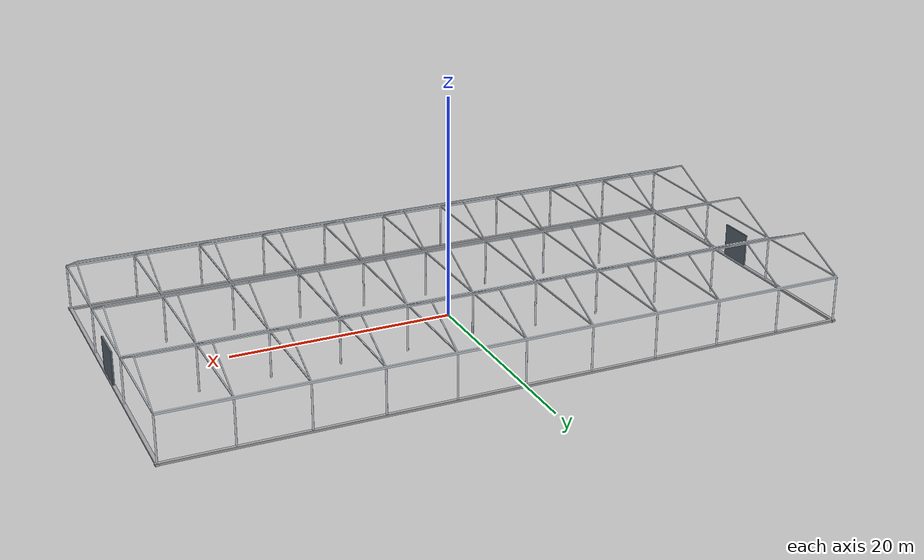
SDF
<?xml version="1.0" ?>
<sdf version="1.9">
  <model name="polyhouse_structure">
    <static>true</static>

    <!-- Main Structural Link -->
    <link name="structure_frame">
      <pose>0 0 0 0 0 0</pose>

      <!-- Concrete Foundation Plinths & Perimeter    -->
      <visual name="foundation_north">
        <pose>0 15.0 0.1 0 0 0</pose>
        <geometry><box><size>60.4 0.3 0.2</size></box></geometry>
        <material><ambient>0.6 0.6 0.62 1</ambient><diffuse>0.65 0.65 0.67 1</diffuse><roughness>0.8</roughness></material>
      </visual>
      <visual name="foundation_south">
        <pose>0 -15.0 0.1 0 0 0</pose>
        <geometry><box><size>60.4 0.3 0.2</size></box></geometry>
        <material><ambient>0.6 0.6 0.62 1</ambient><diffuse>0.65 0.65 0.67 1</diffuse><roughness>0.8</roughness></material>
      </visual>
      <visual name="foundation_east">
        <pose>30.0 0 0.1 0 0 0</pose>
        <geometry><box><size>0.3 30.4 0.2</size></box></geometry>
        <material><ambient>0.6 0.6 0.62 1</ambient><diffuse>0.65 0.65 0.67 1</diffuse><roughness>0.8</roughness></material>
      </visual>
      <visual name="foundation_west">
        <pose>-30.0 0 0.1 0 0 0</pose>
        <geometry><box><size>0.3 30.4 0.2</size></box></geometry>
        <material><ambient>0.6 0.6 0.62 1</ambient><diffuse>0.65 0.65 0.67 1</diffuse><roughness>0.8</roughness></material>
      </visual>

      <!-- Longitudinal Gutter Beams (Z = 4.2m)       -->
      <visual name="gutter_beam_y_neg15">
        <pose>0 -15.0 4.2 0 0 0</pose>
        <geometry><box><size>60.0 0.18 0.18</size></box></geometry>
        <material><ambient>0.7 0.73 0.76 1</ambient><diffuse>0.8 0.83 0.86 1</diffuse><specular>0.6 0.6 0.6 1</specular></material>
      </visual>
      <visual name="gutter_beam_y_neg5">
        <pose>0 -5.0 4.2 0 0 0</pose>
        <geometry><box><size>60.0 0.18 0.18</size></box></geometry>
        <material><ambient>0.7 0.73 0.76 1</ambient><diffuse>0.8 0.83 0.86 1</diffuse><specular>0.6 0.6 0.6 1</specular></material>
      </visual>
      <visual name="gutter_beam_y_pos5">
        <pose>0 5.0 4.2 0 0 0</pose>
        <geometry><box><size>60.0 0.18 0.18</size></box></geometry>
        <material><ambient>0.7 0.73 0.76 1</ambient><diffuse>0.8 0.83 0.86 1</diffuse><specular>0.6 0.6 0.6 1</specular></material>
      </visual>
      <visual name="gutter_beam_y_pos15">
        <pose>0 15.0 4.2 0 0 0</pose>
        <geometry><box><size>60.0 0.18 0.18</size></box></geometry>
        <material><ambient>0.7 0.73 0.76 1</ambient><diffuse>0.8 0.83 0.86 1</diffuse><specular>0.6 0.6 0.6 1</specular></material>
      </visual>

      <!-- Longitudinal Ridge Beams (Z = 6.5m)        -->
      <visual name="ridge_beam_bay1">
        <pose>0 -10.0 6.5 0 0 0</pose>
        <geometry><box><size>60.0 0.12 0.12</size></box></geometry>
        <material><ambient>0.7 0.73 0.76 1</ambient><diffuse>0.8 0.83 0.86 1</diffuse><specular>0.6 0.6 0.6 1</specular></material>
      </visual>
      <visual name="ridge_beam_bay2">
        <pose>0 0.0 6.5 0 0 0</pose>
        <geometry><box><size>60.0 0.12 0.12</size></box></geometry>
        <material><ambient>0.7 0.73 0.76 1</ambient><diffuse>0.8 0.83 0.86 1</diffuse><metalness>0.7</metalness><roughness>0.3</roughness></material>
      </visual>
      <visual name="ridge_beam_bay3">
        <pose>0 10.0 6.5 0 0 0</pose>
        <geometry><box><size>60.0 0.12 0.12</size></box></geometry>
        <material><ambient>0.7 0.73 0.76 1</ambient><diffuse>0.8 0.83 0.86 1</diffuse><metalness>0.7</metalness><roughness>0.3</roughness></material>
      </visual>

      <!-- Doorway Portal Frames (Front X=-30, Rear X=+30) -->
      <visual name="door_frame_west">
        <pose>-30.0 0 1.6 0 0 0</pose>
        <geometry><box><size>0.15 3.2 3.2</size></box></geometry>
        <material><ambient>0.3 0.35 0.4 1</ambient><diffuse>0.35 0.4 0.45 1</diffuse></material>
      </visual>
      <visual name="door_frame_east">
        <pose>30.0 0 1.6 0 0 0</pose>
        <geometry><box><size>0.15 3.2 3.2</size></box></geometry>
        <material><ambient>0.3 0.35 0.4 1</ambient><diffuse>0.35 0.4 0.45 1</diffuse></material>
      </visual>

      <!-- Collision for main perimeter and columns -->
      <collision name="perimeter_collision_north">
        <pose>0 15.0 2.1 0 0 0</pose>
        <geometry><box><size>60.0 0.2 4.2</size></box></geometry>
      </collision>
      <collision name="perimeter_collision_south">
        <pose>0 -15.0 2.1 0 0 0</pose>
        <geometry><box><size>60.0 0.2 4.2</size></box></geometry>
      </collision>
      <collision name="perimeter_collision_east">
        <pose>30.0 0 2.1 0 0 0</pose>
        <geometry><box><size>0.2 30.0 4.2</size></box></geometry>
      </collision>
      <collision name="perimeter_collision_west">
        <pose>-30.0 0 2.1 0 0 0</pose>
        <geometry><box><size>0.2 30.0 4.2</size></box></geometry>
      </collision>
    </link>

    <!-- Sub-links for the 11 Structural Frame Trusses along X -->
    <!-- Stations at X = -30, -24, -18, -12, -6, 0, 6, 12, 18, 24, 30 -->
    <!-- Each station includes 4 vertical columns and 6 gable rafters (3 bays) -->
    <!-- Rafter angle: atan2(2.3m, 5.0m) = 0.431 rad (24.7 deg), length = sqrt(5^2 + 2.3^2) = 5.50m -->

    <!-- Template for 11 frame stations: -->
    <!-- Bay 1 Rafters: Y=-12.5, Z=5.35, Roll=0.431 & Y=-7.5, Z=5.35, Roll=-0.431 -->
    <!-- Bay 2 Rafters: Y=-2.5, Z=5.35, Roll=0.431 & Y=2.5, Z=5.35, Roll=-0.431 -->
    <!-- Bay 3 Rafters: Y=7.5, Z=5.35, Roll=0.431 & Y=12.5, Z=5.35, Roll=-0.431 -->
    <!-- Horizontal Cross Tie at Z=4.2 across Y from -15 to +15 -->

    <!-- Station 0: X = -30.0 -->
    <link name="frame_st_00">
      <pose>-30.0 0 0 0 0 0</pose>
      <visual name="col_0"><pose>0 -15.0 2.1 0 0 0</pose><geometry><cylinder><radius>0.08</radius><length>4.2</length></cylinder></geometry><material><ambient>0.75 0.77 0.8 1</ambient><diffuse>0.82 0.84 0.87 1</diffuse></material></visual>
      <visual name="col_1"><pose>0 -5.0 2.1 0 0 0</pose><geometry><cylinder><radius>0.08</radius><length>4.2</length></cylinder></geometry><material><ambient>0.75 0.77 0.8 1</ambient><diffuse>0.82 0.84 0.87 1</diffuse></material></visual>
      <visual name="col_2"><pose>0 5.0 2.1 0 0 0</pose><geometry><cylinder><radius>0.08</radius><length>4.2</length></cylinder></geometry><material><ambient>0.75 0.77 0.8 1</ambient><diffuse>0.82 0.84 0.87 1</diffuse></material></visual>
      <visual name="col_3"><pose>0 15.0 2.1 0 0 0</pose><geometry><cylinder><radius>0.08</radius><length>4.2</length></cylinder></geometry><material><ambient>0.75 0.77 0.8 1</ambient><diffuse>0.82 0.84 0.87 1</diffuse></material></visual>
      <visual name="tie"><pose>0 0 4.2 0 0 0</pose><geometry><box><size>0.1 30.0 0.1</size></box></geometry><material><ambient>0.7 0.73 0.76 1</ambient><diffuse>0.8 0.83 0.86 1</diffuse></material></visual>
      <visual name="r1"><pose>0 -12.5 5.35 0.431 0 0</pose><geometry><box><size>0.08 5.51 0.08</size></box></geometry><material><ambient>0.7 0.73 0.76 1</ambient><diffuse>0.8 0.83 0.86 1</diffuse></material></visual>
      <visual name="r2"><pose>0 -7.5 5.35 -0.431 0 0</pose><geometry><box><size>0.08 5.51 0.08</size></box></geometry><material><ambient>0.7 0.73 0.76 1</ambient><diffuse>0.8 0.83 0.86 1</diffuse></material></visual>
      <visual name="r3"><pose>0 -2.5 5.35 0.431 0 0</pose><geometry><box><size>0.08 5.51 0.08</size></box></geometry><material><ambient>0.7 0.73 0.76 1</ambient><diffuse>0.8 0.83 0.86 1</diffuse></material></visual>
      <visual name="r4"><pose>0 2.5 5.35 -0.431 0 0</pose><geometry><box><size>0.08 5.51 0.08</size></box></geometry><material><ambient>0.7 0.73 0.76 1</ambient><diffuse>0.8 0.83 0.86 1</diffuse></material></visual>
      <visual name="r5"><pose>0 7.5 5.35 0.431 0 0</pose><geometry><box><size>0.08 5.51 0.08</size></box></geometry><material><ambient>0.7 0.73 0.76 1</ambient><diffuse>0.8 0.83 0.86 1</diffuse></material></visual>
      <visual name="r6"><pose>0 12.5 5.35 -0.431 0 0</pose><geometry><box><size>0.08 5.51 0.08</size></box></geometry><material><ambient>0.7 0.73 0.76 1</ambient><diffuse>0.8 0.83 0.86 1</diffuse></material></visual>
    </link>

    <!-- Station 1: X = -24.0 -->
    <link name="frame_st_01">
      <pose>-24.0 0 0 0 0 0</pose>
      <visual name="col_0"><pose>0 -15.0 2.1 0 0 0</pose><geometry><cylinder><radius>0.08</radius><length>4.2</length></cylinder></geometry><material><ambient>0.75 0.77 0.8 1</ambient><diffuse>0.82 0.84 0.87 1</diffuse></material></visual>
      <visual name="col_1"><pose>0 -5.0 2.1 0 0 0</pose><geometry><cylinder><radius>0.08</radius><length>4.2</length></cylinder></geometry><material><ambient>0.75 0.77 0.8 1</ambient><diffuse>0.82 0.84 0.87 1</diffuse></material></visual>
      <visual name="col_2"><pose>0 5.0 2.1 0 0 0</pose><geometry><cylinder><radius>0.08</radius><length>4.2</length></cylinder></geometry><material><ambient>0.75 0.77 0.8 1</ambient><diffuse>0.82 0.84 0.87 1</diffuse></material></visual>
      <visual name="col_3"><pose>0 15.0 2.1 0 0 0</pose><geometry><cylinder><radius>0.08</radius><length>4.2</length></cylinder></geometry><material><ambient>0.75 0.77 0.8 1</ambient><diffuse>0.82 0.84 0.87 1</diffuse></material></visual>
      <visual name="tie"><pose>0 0 4.2 0 0 0</pose><geometry><box><size>0.1 30.0 0.1</size></box></geometry><material><ambient>0.7 0.73 0.76 1</ambient><diffuse>0.8 0.83 0.86 1</diffuse></material></visual>
      <visual name="r1"><pose>0 -12.5 5.35 0.431 0 0</pose><geometry><box><size>0.08 5.51 0.08</size></box></geometry><material><ambient>0.7 0.73 0.76 1</ambient><diffuse>0.8 0.83 0.86 1</diffuse></material></visual>
      <visual name="r2"><pose>0 -7.5 5.35 -0.431 0 0</pose><geometry><box><size>0.08 5.51 0.08</size></box></geometry><material><ambient>0.7 0.73 0.76 1</ambient><diffuse>0.8 0.83 0.86 1</diffuse></material></visual>
      <visual name="r3"><pose>0 -2.5 5.35 0.431 0 0</pose><geometry><box><size>0.08 5.51 0.08</size></box></geometry><material><ambient>0.7 0.73 0.76 1</ambient><diffuse>0.8 0.83 0.86 1</diffuse></material></visual>
      <visual name="r4"><pose>0 2.5 5.35 -0.431 0 0</pose><geometry><box><size>0.08 5.51 0.08</size></box></geometry><material><ambient>0.7 0.73 0.76 1</ambient><diffuse>0.8 0.83 0.86 1</diffuse></material></visual>
      <visual name="r5"><pose>0 7.5 5.35 0.431 0 0</pose><geometry><box><size>0.08 5.51 0.08</size></box></geometry><material><ambient>0.7 0.73 0.76 1</ambient><diffuse>0.8 0.83 0.86 1</diffuse></material></visual>
      <visual name="r6"><pose>0 12.5 5.35 -0.431 0 0</pose><geometry><box><size>0.08 5.51 0.08</size></box></geometry><material><ambient>0.7 0.73 0.76 1</ambient><diffuse>0.8 0.83 0.86 1</diffuse></material></visual>
    </link>

    <!-- Station 2: X = -18.0 -->
    <link name="frame_st_02">
      <pose>-18.0 0 0 0 0 0</pose>
      <visual name="col_0"><pose>0 -15.0 2.1 0 0 0</pose><geometry><cylinder><radius>0.08</radius><length>4.2</length></cylinder></geometry><material><ambient>0.75 0.77 0.8 1</ambient><diffuse>0.82 0.84 0.87 1</diffuse></material></visual>
      <visual name="col_1"><pose>0 -5.0 2.1 0 0 0</pose><geometry><cylinder><radius>0.08</radius><length>4.2</length></cylinder></geometry><material><ambient>0.75 0.77 0.8 1</ambient><diffuse>0.82 0.84 0.87 1</diffuse></material></visual>
      <visual name="col_2"><pose>0 5.0 2.1 0 0 0</pose><geometry><cylinder><radius>0.08</radius><length>4.2</length></cylinder></geometry><material><ambient>0.75 0.77 0.8 1</ambient><diffuse>0.82 0.84 0.87 1</diffuse></material></visual>
      <visual name="col_3"><pose>0 15.0 2.1 0 0 0</pose><geometry><cylinder><radius>0.08</radius><length>4.2</length></cylinder></geometry><material><ambient>0.75 0.77 0.8 1</ambient><diffuse>0.82 0.84 0.87 1</diffuse></material></visual>
      <visual name="tie"><pose>0 0 4.2 0 0 0</pose><geometry><box><size>0.1 30.0 0.1</size></box></geometry><material><ambient>0.7 0.73 0.76 1</ambient><diffuse>0.8 0.83 0.86 1</diffuse></material></visual>
      <visual name="r1"><pose>0 -12.5 5.35 0.431 0 0</pose><geometry><box><size>0.08 5.51 0.08</size></box></geometry><material><ambient>0.7 0.73 0.76 1</ambient><diffuse>0.8 0.83 0.86 1</diffuse></material></visual>
      <visual name="r2"><pose>0 -7.5 5.35 -0.431 0 0</pose><geometry><box><size>0.08 5.51 0.08</size></box></geometry><material><ambient>0.7 0.73 0.76 1</ambient><diffuse>0.8 0.83 0.86 1</diffuse></material></visual>
      <visual name="r3"><pose>0 -2.5 5.35 0.431 0 0</pose><geometry><box><size>0.08 5.51 0.08</size></box></geometry><material><ambient>0.7 0.73 0.76 1</ambient><diffuse>0.8 0.83 0.86 1</diffuse></material></visual>
      <visual name="r4"><pose>0 2.5 5.35 -0.431 0 0</pose><geometry><box><size>0.08 5.51 0.08</size></box></geometry><material><ambient>0.7 0.73 0.76 1</ambient><diffuse>0.8 0.83 0.86 1</diffuse></material></visual>
      <visual name="r5"><pose>0 7.5 5.35 0.431 0 0</pose><geometry><box><size>0.08 5.51 0.08</size></box></geometry><material><ambient>0.7 0.73 0.76 1</ambient><diffuse>0.8 0.83 0.86 1</diffuse></material></visual>
      <visual name="r6"><pose>0 12.5 5.35 -0.431 0 0</pose><geometry><box><size>0.08 5.51 0.08</size></box></geometry><material><ambient>0.7 0.73 0.76 1</ambient><diffuse>0.8 0.83 0.86 1</diffuse></material></visual>
    </link>

    <!-- Station 3: X = -12.0 -->
    <link name="frame_st_03">
      <pose>-12.0 0 0 0 0 0</pose>
      <visual name="col_0"><pose>0 -15.0 2.1 0 0 0</pose><geometry><cylinder><radius>0.08</radius><length>4.2</length></cylinder></geometry><material><ambient>0.75 0.77 0.8 1</ambient><diffuse>0.82 0.84 0.87 1</diffuse></material></visual>
      <visual name="col_1"><pose>0 -5.0 2.1 0 0 0</pose><geometry><cylinder><radius>0.08</radius><length>4.2</length></cylinder></geometry><material><ambient>0.75 0.77 0.8 1</ambient><diffuse>0.82 0.84 0.87 1</diffuse></material></visual>
      <visual name="col_2"><pose>0 5.0 2.1 0 0 0</pose><geometry><cylinder><radius>0.08</radius><length>4.2</length></cylinder></geometry><material><ambient>0.75 0.77 0.8 1</ambient><diffuse>0.82 0.84 0.87 1</diffuse></material></visual>
      <visual name="col_3"><pose>0 15.0 2.1 0 0 0</pose><geometry><cylinder><radius>0.08</radius><length>4.2</length></cylinder></geometry><material><ambient>0.75 0.77 0.8 1</ambient><diffuse>0.82 0.84 0.87 1</diffuse></material></visual>
      <visual name="tie"><pose>0 0 4.2 0 0 0</pose><geometry><box><size>0.1 30.0 0.1</size></box></geometry><material><ambient>0.7 0.73 0.76 1</ambient><diffuse>0.8 0.83 0.86 1</diffuse></material></visual>
      <visual name="r1"><pose>0 -12.5 5.35 0.431 0 0</pose><geometry><box><size>0.08 5.51 0.08</size></box></geometry><material><ambient>0.7 0.73 0.76 1</ambient><diffuse>0.8 0.83 0.86 1</diffuse></material></visual>
      <visual name="r2"><pose>0 -7.5 5.35 -0.431 0 0</pose><geometry><box><size>0.08 5.51 0.08</size></box></geometry><material><ambient>0.7 0.73 0.76 1</ambient><diffuse>0.8 0.83 0.86 1</diffuse></material></visual>
      <visual name="r3"><pose>0 -2.5 5.35 0.431 0 0</pose><geometry><box><size>0.08 5.51 0.08</size></box></geometry><material><ambient>0.7 0.73 0.76 1</ambient><diffuse>0.8 0.83 0.86 1</diffuse></material></visual>
      <visual name="r4"><pose>0 2.5 5.35 -0.431 0 0</pose><geometry><box><size>0.08 5.51 0.08</size></box></geometry><material><ambient>0.7 0.73 0.76 1</ambient><diffuse>0.8 0.83 0.86 1</diffuse></material></visual>
      <visual name="r5"><pose>0 7.5 5.35 0.431 0 0</pose><geometry><box><size>0.08 5.51 0.08</size></box></geometry><material><ambient>0.7 0.73 0.76 1</ambient><diffuse>0.8 0.83 0.86 1</diffuse></material></visual>
      <visual name="r6"><pose>0 12.5 5.35 -0.431 0 0</pose><geometry><box><size>0.08 5.51 0.08</size></box></geometry><material><ambient>0.7 0.73 0.76 1</ambient><diffuse>0.8 0.83 0.86 1</diffuse></material></visual>
    </link>

    <!-- Station 4: X = -6.0 -->
    <link name="frame_st_04">
      <pose>-6.0 0 0 0 0 0</pose>
      <visual name="col_0"><pose>0 -15.0 2.1 0 0 0</pose><geometry><cylinder><radius>0.08</radius><length>4.2</length></cylinder></geometry><material><ambient>0.75 0.77 0.8 1</ambient><diffuse>0.82 0.84 0.87 1</diffuse></material></visual>
      <visual name="col_1"><pose>0 -5.0 2.1 0 0 0</pose><geometry><cylinder><radius>0.08</radius><length>4.2</length></cylinder></geometry><material><ambient>0.75 0.77 0.8 1</ambient><diffuse>0.82 0.84 0.87 1</diffuse></material></visual>
      <visual name="col_2"><pose>0 5.0 2.1 0 0 0</pose><geometry><cylinder><radius>0.08</radius><length>4.2</length></cylinder></geometry><material><ambient>0.75 0.77 0.8 1</ambient><diffuse>0.82 0.84 0.87 1</diffuse></material></visual>
      <visual name="col_3"><pose>0 15.0 2.1 0 0 0</pose><geometry><cylinder><radius>0.08</radius><length>4.2</length></cylinder></geometry><material><ambient>0.75 0.77 0.8 1</ambient><diffuse>0.82 0.84 0.87 1</diffuse></material></visual>
      <visual name="tie"><pose>0 0 4.2 0 0 0</pose><geometry><box><size>0.1 30.0 0.1</size></box></geometry><material><ambient>0.7 0.73 0.76 1</ambient><diffuse>0.8 0.83 0.86 1</diffuse></material></visual>
      <visual name="r1"><pose>0 -12.5 5.35 0.431 0 0</pose><geometry><box><size>0.08 5.51 0.08</size></box></geometry><material><ambient>0.7 0.73 0.76 1</ambient><diffuse>0.8 0.83 0.86 1</diffuse></material></visual>
      <visual name="r2"><pose>0 -7.5 5.35 -0.431 0 0</pose><geometry><box><size>0.08 5.51 0.08</size></box></geometry><material><ambient>0.7 0.73 0.76 1</ambient><diffuse>0.8 0.83 0.86 1</diffuse></material></visual>
      <visual name="r3"><pose>0 -2.5 5.35 0.431 0 0</pose><geometry><box><size>0.08 5.51 0.08</size></box></geometry><material><ambient>0.7 0.73 0.76 1</ambient><diffuse>0.8 0.83 0.86 1</diffuse></material></visual>
      <visual name="r4"><pose>0 2.5 5.35 -0.431 0 0</pose><geometry><box><size>0.08 5.51 0.08</size></box></geometry><material><ambient>0.7 0.73 0.76 1</ambient><diffuse>0.8 0.83 0.86 1</diffuse></material></visual>
      <visual name="r5"><pose>0 7.5 5.35 0.431 0 0</pose><geometry><box><size>0.08 5.51 0.08</size></box></geometry><material><ambient>0.7 0.73 0.76 1</ambient><diffuse>0.8 0.83 0.86 1</diffuse></material></visual>
      <visual name="r6"><pose>0 12.5 5.35 -0.431 0 0</pose><geometry><box><size>0.08 5.51 0.08</size></box></geometry><material><ambient>0.7 0.73 0.76 1</ambient><diffuse>0.8 0.83 0.86 1</diffuse></material></visual>
    </link>

    <!-- Station 5: X = 0.0 (Mid-span main cross arch) -->
    <link name="frame_st_05">
      <pose>0.0 0 0 0 0 0</pose>
      <visual name="col_0"><pose>0 -15.0 2.1 0 0 0</pose><geometry><cylinder><radius>0.08</radius><length>4.2</length></cylinder></geometry><material><ambient>0.75 0.77 0.8 1</ambient><diffuse>0.82 0.84 0.87 1</diffuse></material></visual>
      <visual name="col_1"><pose>0 -5.0 2.1 0 0 0</pose><geometry><cylinder><radius>0.08</radius><length>4.2</length></cylinder></geometry><material><ambient>0.75 0.77 0.8 1</ambient><diffuse>0.82 0.84 0.87 1</diffuse></material></visual>
      <visual name="col_2"><pose>0 5.0 2.1 0 0 0</pose><geometry><cylinder><radius>0.08</radius><length>4.2</length></cylinder></geometry><material><ambient>0.75 0.77 0.8 1</ambient><diffuse>0.82 0.84 0.87 1</diffuse></material></visual>
      <visual name="col_3"><pose>0 15.0 2.1 0 0 0</pose><geometry><cylinder><radius>0.08</radius><length>4.2</length></cylinder></geometry><material><ambient>0.75 0.77 0.8 1</ambient><diffuse>0.82 0.84 0.87 1</diffuse></material></visual>
      <visual name="tie"><pose>0 0 4.2 0 0 0</pose><geometry><box><size>0.1 30.0 0.1</size></box></geometry><material><ambient>0.7 0.73 0.76 1</ambient><diffuse>0.8 0.83 0.86 1</diffuse></material></visual>
      <visual name="r1"><pose>0 -12.5 5.35 0.431 0 0</pose><geometry><box><size>0.08 5.51 0.08</size></box></geometry><material><ambient>0.7 0.73 0.76 1</ambient><diffuse>0.8 0.83 0.86 1</diffuse></material></visual>
      <visual name="r2"><pose>0 -7.5 5.35 -0.431 0 0</pose><geometry><box><size>0.08 5.51 0.08</size></box></geometry><material><ambient>0.7 0.73 0.76 1</ambient><diffuse>0.8 0.83 0.86 1</diffuse></material></visual>
      <visual name="r3"><pose>0 -2.5 5.35 0.431 0 0</pose><geometry><box><size>0.08 5.51 0.08</size></box></geometry><material><ambient>0.7 0.73 0.76 1</ambient><diffuse>0.8 0.83 0.86 1</diffuse></material></visual>
      <visual name="r4"><pose>0 2.5 5.35 -0.431 0 0</pose><geometry><box><size>0.08 5.51 0.08</size></box></geometry><material><ambient>0.7 0.73 0.76 1</ambient><diffuse>0.8 0.83 0.86 1</diffuse></material></visual>
      <visual name="r5"><pose>0 7.5 5.35 0.431 0 0</pose><geometry><box><size>0.08 5.51 0.08</size></box></geometry><material><ambient>0.7 0.73 0.76 1</ambient><diffuse>0.8 0.83 0.86 1</diffuse></material></visual>
      <visual name="r6"><pose>0 12.5 5.35 -0.431 0 0</pose><geometry><box><size>0.08 5.51 0.08</size></box></geometry><material><ambient>0.7 0.73 0.76 1</ambient><diffuse>0.8 0.83 0.86 1</diffuse></material></visual>
    </link>

    <!-- Station 6: X = 6.0 -->
    <link name="frame_st_06">
      <pose>6.0 0 0 0 0 0</pose>
      <visual name="col_0"><pose>0 -15.0 2.1 0 0 0</pose><geometry><cylinder><radius>0.08</radius><length>4.2</length></cylinder></geometry><material><ambient>0.75 0.77 0.8 1</ambient><diffuse>0.82 0.84 0.87 1</diffuse></material></visual>
      <visual name="col_1"><pose>0 -5.0 2.1 0 0 0</pose><geometry><cylinder><radius>0.08</radius><length>4.2</length></cylinder></geometry><material><ambient>0.75 0.77 0.8 1</ambient><diffuse>0.82 0.84 0.87 1</diffuse></material></visual>
      <visual name="col_2"><pose>0 5.0 2.1 0 0 0</pose><geometry><cylinder><radius>0.08</radius><length>4.2</length></cylinder></geometry><material><ambient>0.75 0.77 0.8 1</ambient><diffuse>0.82 0.84 0.87 1</diffuse></material></visual>
      <visual name="col_3"><pose>0 15.0 2.1 0 0 0</pose><geometry><cylinder><radius>0.08</radius><length>4.2</length></cylinder></geometry><material><ambient>0.75 0.77 0.8 1</ambient><diffuse>0.82 0.84 0.87 1</diffuse></material></visual>
      <visual name="tie"><pose>0 0 4.2 0 0 0</pose><geometry><box><size>0.1 30.0 0.1</size></box></geometry><material><ambient>0.7 0.73 0.76 1</ambient><diffuse>0.8 0.83 0.86 1</diffuse></material></visual>
      <visual name="r1"><pose>0 -12.5 5.35 0.431 0 0</pose><geometry><box><size>0.08 5.51 0.08</size></box></geometry><material><ambient>0.7 0.73 0.76 1</ambient><diffuse>0.8 0.83 0.86 1</diffuse></material></visual>
      <visual name="r2"><pose>0 -7.5 5.35 -0.431 0 0</pose><geometry><box><size>0.08 5.51 0.08</size></box></geometry><material><ambient>0.7 0.73 0.76 1</ambient><diffuse>0.8 0.83 0.86 1</diffuse></material></visual>
      <visual name="r3"><pose>0 -2.5 5.35 0.431 0 0</pose><geometry><box><size>0.08 5.51 0.08</size></box></geometry><material><ambient>0.7 0.73 0.76 1</ambient><diffuse>0.8 0.83 0.86 1</diffuse></material></visual>
      <visual name="r4"><pose>0 2.5 5.35 -0.431 0 0</pose><geometry><box><size>0.08 5.51 0.08</size></box></geometry><material><ambient>0.7 0.73 0.76 1</ambient><diffuse>0.8 0.83 0.86 1</diffuse></material></visual>
      <visual name="r5"><pose>0 7.5 5.35 0.431 0 0</pose><geometry><box><size>0.08 5.51 0.08</size></box></geometry><material><ambient>0.7 0.73 0.76 1</ambient><diffuse>0.8 0.83 0.86 1</diffuse></material></visual>
      <visual name="r6"><pose>0 12.5 5.35 -0.431 0 0</pose><geometry><box><size>0.08 5.51 0.08</size></box></geometry><material><ambient>0.7 0.73 0.76 1</ambient><diffuse>0.8 0.83 0.86 1</diffuse></material></visual>
    </link>

    <!-- Station 7: X = 12.0 -->
    <link name="frame_st_07">
      <pose>12.0 0 0 0 0 0</pose>
      <visual name="col_0"><pose>0 -15.0 2.1 0 0 0</pose><geometry><cylinder><radius>0.08</radius><length>4.2</length></cylinder></geometry><material><ambient>0.75 0.77 0.8 1</ambient><diffuse>0.82 0.84 0.87 1</diffuse></material></visual>
      <visual name="col_1"><pose>0 -5.0 2.1 0 0 0</pose><geometry><cylinder><radius>0.08</radius><length>4.2</length></cylinder></geometry><material><ambient>0.75 0.77 0.8 1</ambient><diffuse>0.82 0.84 0.87 1</diffuse></material></visual>
      <visual name="col_2"><pose>0 5.0 2.1 0 0 0</pose><geometry><cylinder><radius>0.08</radius><length>4.2</length></cylinder></geometry><material><ambient>0.75 0.77 0.8 1</ambient><diffuse>0.82 0.84 0.87 1</diffuse></material></visual>
      <visual name="col_3"><pose>0 15.0 2.1 0 0 0</pose><geometry><cylinder><radius>0.08</radius><length>4.2</length></cylinder></geometry><material><ambient>0.75 0.77 0.8 1</ambient><diffuse>0.82 0.84 0.87 1</diffuse></material></visual>
      <visual name="tie"><pose>0 0 4.2 0 0 0</pose><geometry><box><size>0.1 30.0 0.1</size></box></geometry><material><ambient>0.7 0.73 0.76 1</ambient><diffuse>0.8 0.83 0.86 1</diffuse></material></visual>
      <visual name="r1"><pose>0 -12.5 5.35 0.431 0 0</pose><geometry><box><size>0.08 5.51 0.08</size></box></geometry><material><ambient>0.7 0.73 0.76 1</ambient><diffuse>0.8 0.83 0.86 1</diffuse></material></visual>
      <visual name="r2"><pose>0 -7.5 5.35 -0.431 0 0</pose><geometry><box><size>0.08 5.51 0.08</size></box></geometry><material><ambient>0.7 0.73 0.76 1</ambient><diffuse>0.8 0.83 0.86 1</diffuse></material></visual>
      <visual name="r3"><pose>0 -2.5 5.35 0.431 0 0</pose><geometry><box><size>0.08 5.51 0.08</size></box></geometry><material><ambient>0.7 0.73 0.76 1</ambient><diffuse>0.8 0.83 0.86 1</diffuse></material></visual>
      <visual name="r4"><pose>0 2.5 5.35 -0.431 0 0</pose><geometry><box><size>0.08 5.51 0.08</size></box></geometry><material><ambient>0.7 0.73 0.76 1</ambient><diffuse>0.8 0.83 0.86 1</diffuse></material></visual>
      <visual name="r5"><pose>0 7.5 5.35 0.431 0 0</pose><geometry><box><size>0.08 5.51 0.08</size></box></geometry><material><ambient>0.7 0.73 0.76 1</ambient><diffuse>0.8 0.83 0.86 1</diffuse></material></visual>
      <visual name="r6"><pose>0 12.5 5.35 -0.431 0 0</pose><geometry><box><size>0.08 5.51 0.08</size></box></geometry><material><ambient>0.7 0.73 0.76 1</ambient><diffuse>0.8 0.83 0.86 1</diffuse></material></visual>
    </link>

    <!-- Station 8: X = 18.0 -->
    <link name="frame_st_08">
      <pose>18.0 0 0 0 0 0</pose>
      <visual name="col_0"><pose>0 -15.0 2.1 0 0 0</pose><geometry><cylinder><radius>0.08</radius><length>4.2</length></cylinder></geometry><material><ambient>0.75 0.77 0.8 1</ambient><diffuse>0.82 0.84 0.87 1</diffuse></material></visual>
      <visual name="col_1"><pose>0 -5.0 2.1 0 0 0</pose><geometry><cylinder><radius>0.08</radius><length>4.2</length></cylinder></geometry><material><ambient>0.75 0.77 0.8 1</ambient><diffuse>0.82 0.84 0.87 1</diffuse></material></visual>
      <visual name="col_2"><pose>0 5.0 2.1 0 0 0</pose><geometry><cylinder><radius>0.08</radius><length>4.2</length></cylinder></geometry><material><ambient>0.75 0.77 0.8 1</ambient><diffuse>0.82 0.84 0.87 1</diffuse></material></visual>
      <visual name="col_3"><pose>0 15.0 2.1 0 0 0</pose><geometry><cylinder><radius>0.08</radius><length>4.2</length></cylinder></geometry><material><ambient>0.75 0.77 0.8 1</ambient><diffuse>0.82 0.84 0.87 1</diffuse></material></visual>
      <visual name="tie"><pose>0 0 4.2 0 0 0</pose><geometry><box><size>0.1 30.0 0.1</size></box></geometry><material><ambient>0.7 0.73 0.76 1</ambient><diffuse>0.8 0.83 0.86 1</diffuse></material></visual>
      <visual name="r1"><pose>0 -12.5 5.35 0.431 0 0</pose><geometry><box><size>0.08 5.51 0.08</size></box></geometry><material><ambient>0.7 0.73 0.76 1</ambient><diffuse>0.8 0.83 0.86 1</diffuse></material></visual>
      <visual name="r2"><pose>0 -7.5 5.35 -0.431 0 0</pose><geometry><box><size>0.08 5.51 0.08</size></box></geometry><material><ambient>0.7 0.73 0.76 1</ambient><diffuse>0.8 0.83 0.86 1</diffuse></material></visual>
      <visual name="r3"><pose>0 -2.5 5.35 0.431 0 0</pose><geometry><box><size>0.08 5.51 0.08</size></box></geometry><material><ambient>0.7 0.73 0.76 1</ambient><diffuse>0.8 0.83 0.86 1</diffuse></material></visual>
      <visual name="r4"><pose>0 2.5 5.35 -0.431 0 0</pose><geometry><box><size>0.08 5.51 0.08</size></box></geometry><material><ambient>0.7 0.73 0.76 1</ambient><diffuse>0.8 0.83 0.86 1</diffuse></material></visual>
      <visual name="r5"><pose>0 7.5 5.35 0.431 0 0</pose><geometry><box><size>0.08 5.51 0.08</size></box></geometry><material><ambient>0.7 0.73 0.76 1</ambient><diffuse>0.8 0.83 0.86 1</diffuse></material></visual>
      <visual name="r6"><pose>0 12.5 5.35 -0.431 0 0</pose><geometry><box><size>0.08 5.51 0.08</size></box></geometry><material><ambient>0.7 0.73 0.76 1</ambient><diffuse>0.8 0.83 0.86 1</diffuse></material></visual>
    </link>

    <!-- Station 9: X = 24.0 -->
    <link name="frame_st_09">
      <pose>24.0 0 0 0 0 0</pose>
      <visual name="col_0"><pose>0 -15.0 2.1 0 0 0</pose><geometry><cylinder><radius>0.08</radius><length>4.2</length></cylinder></geometry><material><ambient>0.75 0.77 0.8 1</ambient><diffuse>0.82 0.84 0.87 1</diffuse></material></visual>
      <visual name="col_1"><pose>0 -5.0 2.1 0 0 0</pose><geometry><cylinder><radius>0.08</radius><length>4.2</length></cylinder></geometry><material><ambient>0.75 0.77 0.8 1</ambient><diffuse>0.82 0.84 0.87 1</diffuse></material></visual>
      <visual name="col_2"><pose>0 5.0 2.1 0 0 0</pose><geometry><cylinder><radius>0.08</radius><length>4.2</length></cylinder></geometry><material><ambient>0.75 0.77 0.8 1</ambient><diffuse>0.82 0.84 0.87 1</diffuse></material></visual>
      <visual name="col_3"><pose>0 15.0 2.1 0 0 0</pose><geometry><cylinder><radius>0.08</radius><length>4.2</length></cylinder></geometry><material><ambient>0.75 0.77 0.8 1</ambient><diffuse>0.82 0.84 0.87 1</diffuse></material></visual>
      <visual name="tie"><pose>0 0 4.2 0 0 0</pose><geometry><box><size>0.1 30.0 0.1</size></box></geometry><material><ambient>0.7 0.73 0.76 1</ambient><diffuse>0.8 0.83 0.86 1</diffuse></material></visual>
      <visual name="r1"><pose>0 -12.5 5.35 0.431 0 0</pose><geometry><box><size>0.08 5.51 0.08</size></box></geometry><material><ambient>0.7 0.73 0.76 1</ambient><diffuse>0.8 0.83 0.86 1</diffuse></material></visual>
      <visual name="r2"><pose>0 -7.5 5.35 -0.431 0 0</pose><geometry><box><size>0.08 5.51 0.08</size></box></geometry><material><ambient>0.7 0.73 0.76 1</ambient><diffuse>0.8 0.83 0.86 1</diffuse></material></visual>
      <visual name="r3"><pose>0 -2.5 5.35 0.431 0 0</pose><geometry><box><size>0.08 5.51 0.08</size></box></geometry><material><ambient>0.7 0.73 0.76 1</ambient><diffuse>0.8 0.83 0.86 1</diffuse></material></visual>
      <visual name="r4"><pose>0 2.5 5.35 -0.431 0 0</pose><geometry><box><size>0.08 5.51 0.08</size></box></geometry><material><ambient>0.7 0.73 0.76 1</ambient><diffuse>0.8 0.83 0.86 1</diffuse></material></visual>
      <visual name="r5"><pose>0 7.5 5.35 0.431 0 0</pose><geometry><box><size>0.08 5.51 0.08</size></box></geometry><material><ambient>0.7 0.73 0.76 1</ambient><diffuse>0.8 0.83 0.86 1</diffuse></material></visual>
      <visual name="r6"><pose>0 12.5 5.35 -0.431 0 0</pose><geometry><box><size>0.08 5.51 0.08</size></box></geometry><material><ambient>0.7 0.73 0.76 1</ambient><diffuse>0.8 0.83 0.86 1</diffuse></material></visual>
    </link>

    <!-- Station 10: X = 30.0 -->
    <link name="frame_st_10">
      <pose>30.0 0 0 0 0 0</pose>
      <visual name="col_0"><pose>0 -15.0 2.1 0 0 0</pose><geometry><cylinder><radius>0.08</radius><length>4.2</length></cylinder></geometry><material><ambient>0.75 0.77 0.8 1</ambient><diffuse>0.82 0.84 0.87 1</diffuse></material></visual>
      <visual name="col_1"><pose>0 -5.0 2.1 0 0 0</pose><geometry><cylinder><radius>0.08</radius><length>4.2</length></cylinder></geometry><material><ambient>0.75 0.77 0.8 1</ambient><diffuse>0.82 0.84 0.87 1</diffuse></material></visual>
      <visual name="col_2"><pose>0 5.0 2.1 0 0 0</pose><geometry><cylinder><radius>0.08</radius><length>4.2</length></cylinder></geometry><material><ambient>0.75 0.77 0.8 1</ambient><diffuse>0.82 0.84 0.87 1</diffuse></material></visual>
      <visual name="col_3"><pose>0 15.0 2.1 0 0 0</pose><geometry><cylinder><radius>0.08</radius><length>4.2</length></cylinder></geometry><material><ambient>0.75 0.77 0.8 1</ambient><diffuse>0.82 0.84 0.87 1</diffuse></material></visual>
      <visual name="tie"><pose>0 0 4.2 0 0 0</pose><geometry><box><size>0.1 30.0 0.1</size></box></geometry><material><ambient>0.7 0.73 0.76 1</ambient><diffuse>0.8 0.83 0.86 1</diffuse></material></visual>
      <visual name="r1"><pose>0 -12.5 5.35 0.431 0 0</pose><geometry><box><size>0.08 5.51 0.08</size></box></geometry><material><ambient>0.7 0.73 0.76 1</ambient><diffuse>0.8 0.83 0.86 1</diffuse></material></visual>
      <visual name="r2"><pose>0 -7.5 5.35 -0.431 0 0</pose><geometry><box><size>0.08 5.51 0.08</size></box></geometry><material><ambient>0.7 0.73 0.76 1</ambient><diffuse>0.8 0.83 0.86 1</diffuse></material></visual>
      <visual name="r3"><pose>0 -2.5 5.35 0.431 0 0</pose><geometry><box><size>0.08 5.51 0.08</size></box></geometry><material><ambient>0.7 0.73 0.76 1</ambient><diffuse>0.8 0.83 0.86 1</diffuse></material></visual>
      <visual name="r4"><pose>0 2.5 5.35 -0.431 0 0</pose><geometry><box><size>0.08 5.51 0.08</size></box></geometry><material><ambient>0.7 0.73 0.76 1</ambient><diffuse>0.8 0.83 0.86 1</diffuse></material></visual>
      <visual name="r5"><pose>0 7.5 5.35 0.431 0 0</pose><geometry><box><size>0.08 5.51 0.08</size></box></geometry><material><ambient>0.7 0.73 0.76 1</ambient><diffuse>0.8 0.83 0.86 1</diffuse></material></visual>
      <visual name="r6"><pose>0 12.5 5.35 -0.431 0 0</pose><geometry><box><size>0.08 5.51 0.08</size></box></geometry><material><ambient>0.7 0.73 0.76 1</ambient><diffuse>0.8 0.83 0.86 1</diffuse></material></visual>
    </link>

  </model>
</sdf>
